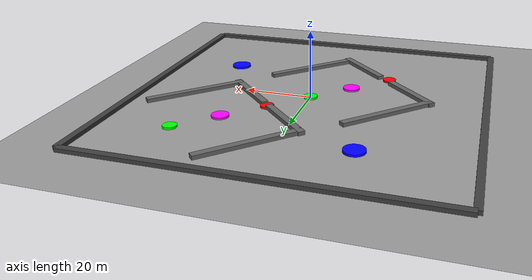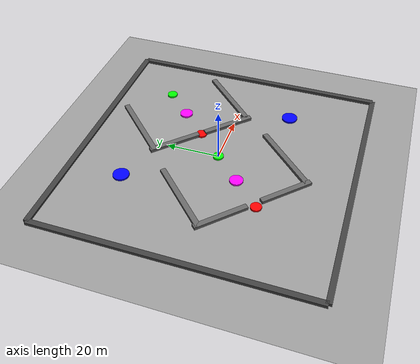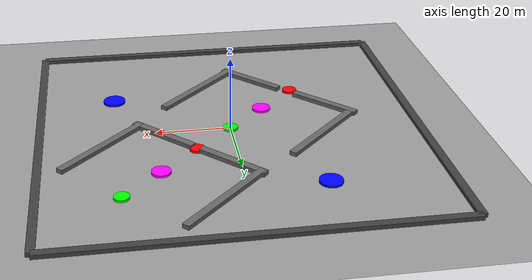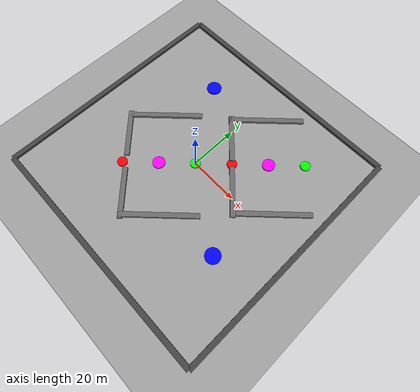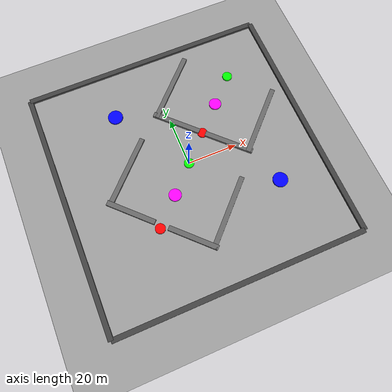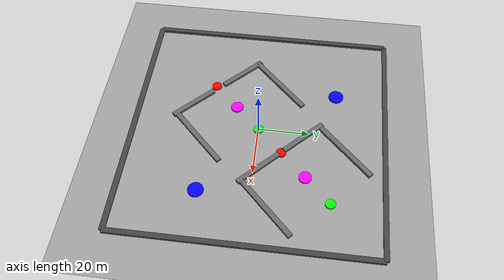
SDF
<sdf version="1.9">
 <world name="default">
  <physics type="ode">
   <max_step_size>0.01</max_step_size>
   <real_time_update_rate>60</real_time_update_rate>
  </physics>
  <model name="ground_plane">
   <static>true</static>
   <link name="link">
    <collision name="collision">
     <geometry><plane><normal>0 0 1</normal><size>100 100</size></plane></geometry>
     <surface><contact><collide_without_contact_bitmask>0x01</collide_without_contact_bitmask></contact></surface>
    </collision>
    <visual name="visual">
     <geometry><plane><normal>0 0 1</normal><size>100 100</size></plane></geometry>
     <material><ambient>0.6 0.6 0.6 1</ambient><diffuse>0.6 0.6 0.6 1</diffuse></material>
    </visual>
   </link>
  </model>
  <model name="bound_top">
   <pose>0 50 0 0 0 0</pose>
   <static>true</static>
   <link name="l">
    <visual name="v">
     <geometry><box><size>100 2 2</size></box></geometry>
     <material><ambient>0.25 0.25 0.25 1</ambient></material>
    </visual>
   </link>
  </model>
  <model name="bound_bottom">
   <pose>0 -50 0 0 0 0</pose>
   <static>true</static>
   <link name="l">
    <visual name="v">
     <geometry><box><size>100 2 2</size></box></geometry>
     <material><ambient>0.25 0.25 0.25 1</ambient></material>
    </visual>
   </link>
  </model>
  <model name="bound_left">
   <pose>-50 0 0 0 0 0</pose>
   <static>true</static>
   <link name="l">
    <visual name="v">
     <geometry><box><size>2 100 2</size></box></geometry>
     <material><ambient>0.25 0.25 0.25 1</ambient></material>
    </visual>
   </link>
  </model>
  <model name="bound_right">
   <pose>50 0 0 0 0 0</pose>
   <static>true</static>
   <link name="l">
    <visual name="v">
     <geometry><box><size>2 100 2</size></box></geometry>
     <material><ambient>0.25 0.25 0.25 1</ambient></material>
    </visual>
   </link>
  </model>
  <model name="b1_back_left">
   <pose>2 18 0 0 0 -0.785398</pose>
   <static>true</static>
   <link name="l">
    <visual name="v">
     <geometry><box><size>20 2 2</size></box></geometry>
     <material><ambient>0.4 0.4 0.4 1</ambient></material>
    </visual>
   </link>
  </model>
  <model name="b1_back_right">
   <pose>18 2 0 0 0 -0.785398</pose>
   <static>true</static>
   <link name="l">
    <visual name="v">
     <geometry><box><size>20 2 2</size></box></geometry>
     <material><ambient>0.4 0.4 0.4 1</ambient></material>
    </visual>
   </link>
  </model>
  <model name="b1_side_top">
   <pose>6 34 0 0 0 0.785398</pose>
   <static>true</static>
   <link name="l">
    <visual name="v">
     <geometry><box><size>30 2 2</size></box></geometry>
     <material><ambient>0.4 0.4 0.4 1</ambient></material>
    </visual>
   </link>
  </model>
  <model name="b1_side_right">
   <pose>34 6 0 0 0 0.785398</pose>
   <static>true</static>
   <link name="l">
    <visual name="v">
     <geometry><box><size>30 2 2</size></box></geometry>
     <material><ambient>0.4 0.4 0.4 1</ambient></material>
    </visual>
   </link>
  </model>
  <model name="b2_back_left">
   <pose>-28 -10 0 0 0 -0.785398</pose>
   <static>true</static>
   <link name="l">
    <visual name="v">
     <geometry><box><size>20 2 2</size></box></geometry>
     <material><ambient>0.4 0.4 0.4 1</ambient></material>
    </visual>
   </link>
  </model>
  <model name="b2_back_right">
   <pose>-10 -28 0 0 0 -0.785398</pose>
   <static>true</static>
   <link name="l">
    <visual name="v">
     <geometry><box><size>20 2 2</size></box></geometry>
     <material><ambient>0.4 0.4 0.4 1</ambient></material>
    </visual>
   </link>
  </model>
  <model name="b2_side_top">
   <pose>-24 6 0 0 0 0.785398</pose>
   <static>true</static>
   <link name="l">
    <visual name="v">
     <geometry><box><size>30 2 2</size></box></geometry>
     <material><ambient>0.4 0.4 0.4 1</ambient></material>
    </visual>
   </link>
  </model>
  <model name="b2_side_right">
   <pose>6 -24 0 0 0 0.785398</pose>
   <static>true</static>
   <link name="l">
    <visual name="v">
     <geometry><box><size>30 2 2</size></box></geometry>
     <material><ambient>0.4 0.4 0.4 1</ambient></material>
    </visual>
   </link>
  </model>
  <model name="trapdoor_1">
   <pose>10 10 0 0 0 0</pose>
   <link name="l">
    <gravity>false</gravity>
    <visual name="v">
     <geometry><cylinder><radius>2</radius><length>1</length></cylinder></geometry>
     <material><ambient>1 0 0 1</ambient></material>
    </visual>
   </link>
   <motion>
    <link_name>l</link_name>
    <direction>-0.707 0.707 0</direction>
    <amplitude>6</amplitude>
    <speed>16</speed>
    <turnaround_threshold>0.5</turnaround_threshold>
   </motion>
  </model>
  <model name="trapdoor_2">
   <pose>-20 -20 0 0 0 0</pose>
   <link name="l">
    <gravity>false</gravity>
    <visual name="v">
     <geometry><cylinder><radius>2</radius><length>1</length></cylinder></geometry>
     <material><ambient>1 0 0 1</ambient></material>
    </visual>
   </link>
   <motion>
    <link_name>l</link_name>
    <direction>-0.707 0.707 0</direction>
    <amplitude>6</amplitude>
    <speed>18</speed>
    <turnaround_threshold>0.5</turnaround_threshold>
   </motion>
  </model>
  <model name="chaos_in_b1">
   <pose>20 20 0 0 0 0</pose>
   <link name="l">
    <gravity>false</gravity>
    <visual name="v">
     <geometry><cylinder><radius>2.5</radius><length>1</length></cylinder></geometry>
     <material><ambient>1 0 1 1</ambient></material>
    </visual>
   </link>
   <motion>
    <link_name>l</link_name>
    <direction>1 0 0</direction>
    <amplitude>8</amplitude>
    <speed>14</speed>
    <turnaround_threshold>0.5</turnaround_threshold>
   </motion>
  </model>
  <model name="chaos_in_b2">
   <pose>-10 -10 0 0 0 0</pose>
   <link name="l">
    <gravity>false</gravity>
    <visual name="v">
     <geometry><cylinder><radius>2.5</radius><length>1</length></cylinder></geometry>
     <material><ambient>1 0 1 1</ambient></material>
    </visual>
   </link>
   <motion>
    <link_name>l</link_name>
    <direction>0 1 0</direction>
    <amplitude>8</amplitude>
    <speed>15</speed>
    <turnaround_threshold>0.5</turnaround_threshold>
   </motion>
  </model>
  <model name="bait_b1">
   <pose>30 30 0 0 0 0</pose>
   <link name="l">
    <gravity>false</gravity>
    <visual name="v">
     <geometry><cylinder><radius>2</radius><length>1</length></cylinder></geometry>
     <material><ambient>0 1 0 1</ambient></material>
    </visual>
   </link>
   <motion>
    <link_name>l</link_name>
    <direction>-0.707 0.707 0</direction>
    <amplitude>12</amplitude>
    <speed>20</speed>
    <turnaround_threshold>0.5</turnaround_threshold>
   </motion>
  </model>
  <model name="bait_b2">
   <link name="l">
    <gravity>false</gravity>
    <visual name="v">
     <geometry><cylinder><radius>2</radius><length>1</length></cylinder></geometry>
     <material><ambient>0 1 0 1</ambient></material>
    </visual>
   </link>
   <motion>
    <link_name>l</link_name>
    <direction>0.707 -0.707 0</direction>
    <amplitude>12</amplitude>
    <speed>22</speed>
    <turnaround_threshold>0.5</turnaround_threshold>
   </motion>
  </model>
  <model name="sweep_outer_1">
   <pose>-20 30 0 0 0 0</pose>
   <link name="l">
    <gravity>false</gravity>
    <visual name="v">
     <geometry><cylinder><radius>3</radius><length>1</length></cylinder></geometry>
     <material><ambient>0 0 1 1</ambient></material>
    </visual>
   </link>
   <motion>
    <link_name>l</link_name>
    <direction>1 0 0</direction>
    <amplitude>15</amplitude>
    <speed>25</speed>
    <turnaround_threshold>0.5</turnaround_threshold>
   </motion>
  </model>
  <model name="sweep_outer_2">
   <pose>30 -20 0 0 0 0</pose>
   <link name="l">
    <gravity>false</gravity>
    <visual name="v">
     <geometry><cylinder><radius>3</radius><length>1</length></cylinder></geometry>
     <material><ambient>0 0 1 1</ambient></material>
    </visual>
   </link>
   <motion>
    <link_name>l</link_name>
    <direction>0 1 0</direction>
    <amplitude>15</amplitude>
    <speed>25</speed>
    <turnaround_threshold>0.5</turnaround_threshold>
   </motion>
  </model>
 </world>
</sdf>
